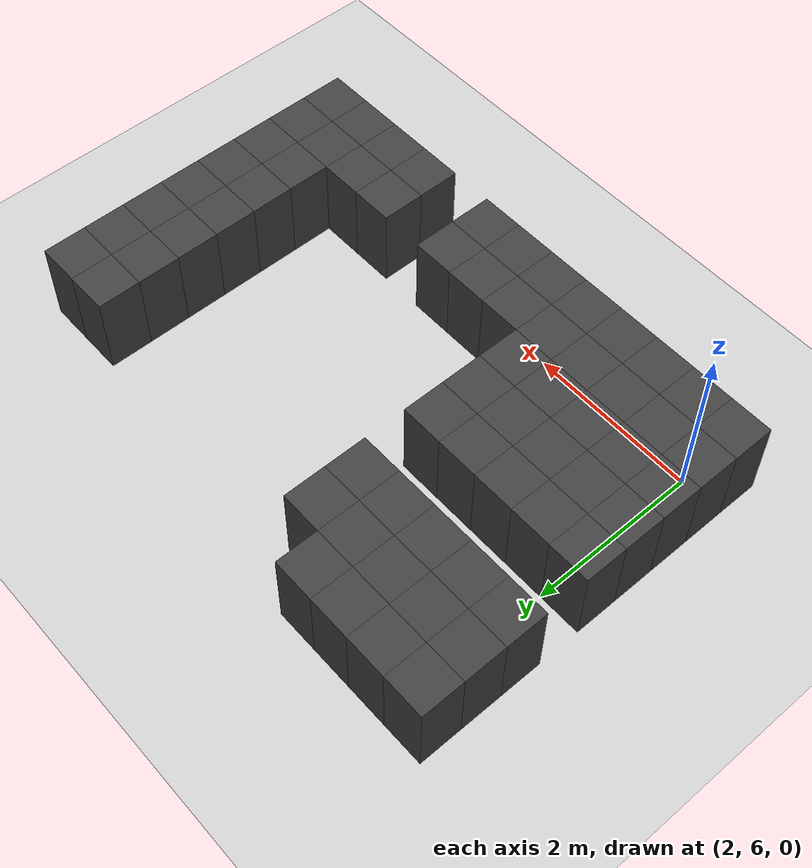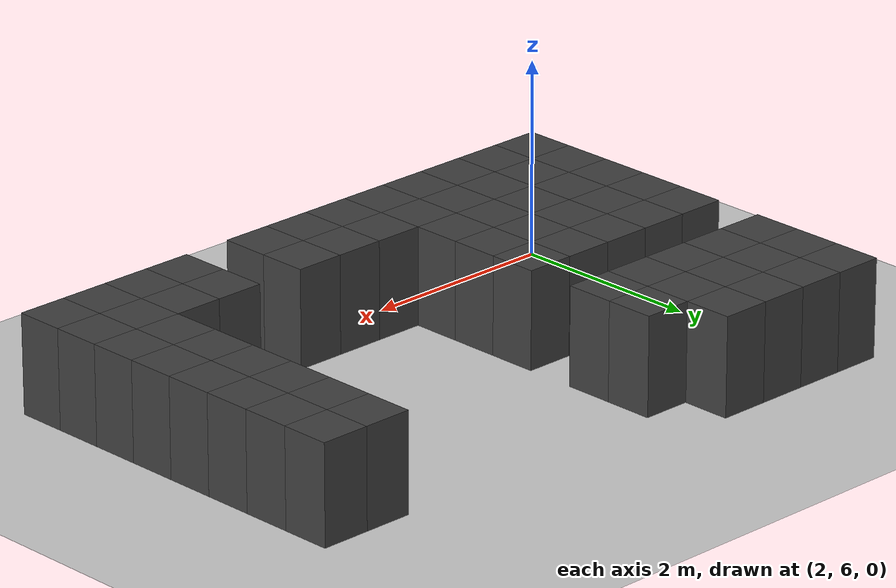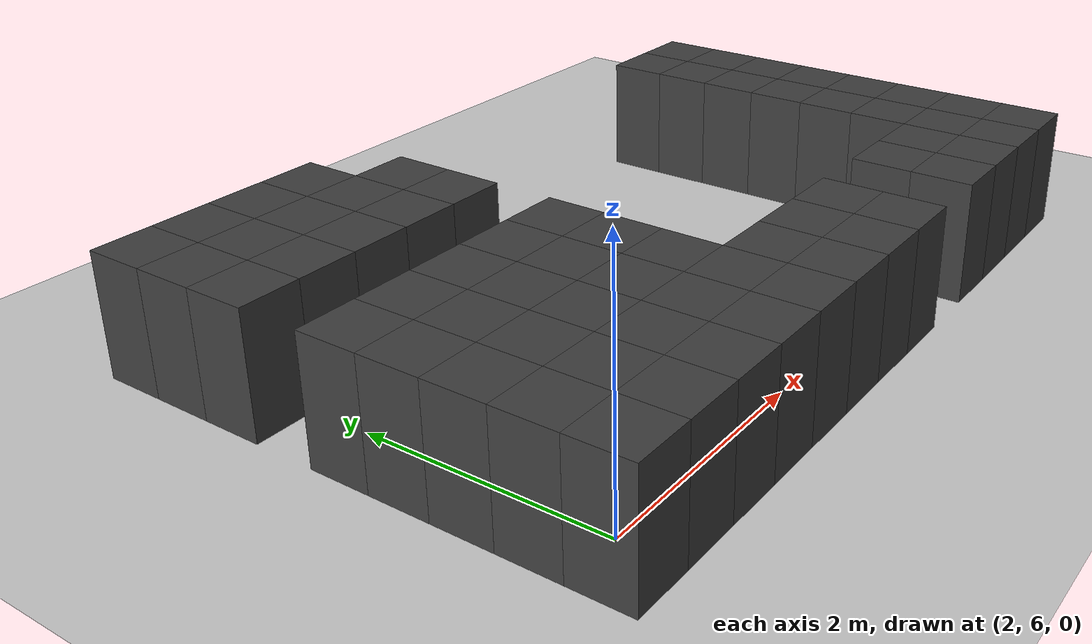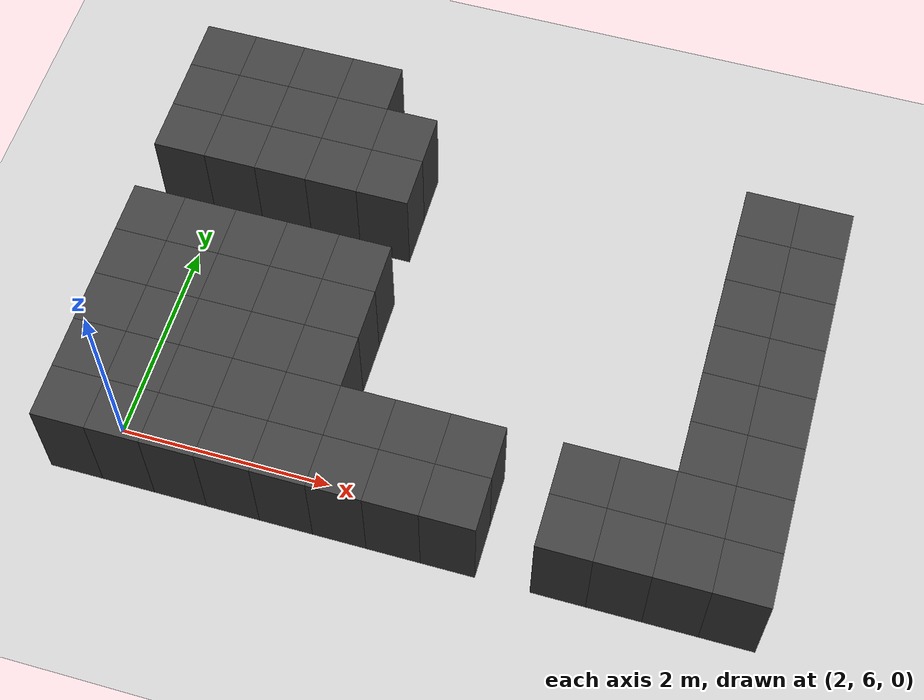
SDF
<sdf version="1.7">
 <world name="map_14735">
  <model name="ground_plane">
   <static>true</static>
   <link name="link">
    <collision name="collision">
     <geometry><plane><normal>0 0 1</normal><size>200 200</size></plane></geometry>
    </collision>
    <visual name="visual">
     <geometry><plane><normal>0 0 1</normal><size>200 200</size></plane></geometry>
     <material><ambient>0.8 0.8 0.8 1</ambient><diffuse>0.8 0.8 0.8 1</diffuse></material>
    </visual>
   </link>
  </model>
  <model name="maze_environment">
   <static>true</static>
   <link name="wall_203">
    <pose>1.750 9.750 0.500 0 0 0</pose>
    <collision name="col"><geometry><box><size>0.5 0.5 1.0</size></box></geometry></collision>
    <visual name="vis">
     <geometry><box><size>0.5 0.5 1.0</size></box></geometry>
     <material><ambient>0.15 0.15 0.15 1</ambient><diffuse>0.25 0.25 0.25 1</diffuse></material>
    </visual>
   </link>
   <link name="wall_204">
    <pose>2.250 9.750 0.500 0 0 0</pose>
    <collision name="col"><geometry><box><size>0.5 0.5 1.0</size></box></geometry></collision>
    <visual name="vis">
     <geometry><box><size>0.5 0.5 1.0</size></box></geometry>
     <material><ambient>0.15 0.15 0.15 1</ambient><diffuse>0.25 0.25 0.25 1</diffuse></material>
    </visual>
   </link>
   <link name="wall_205">
    <pose>2.750 9.750 0.500 0 0 0</pose>
    <collision name="col"><geometry><box><size>0.5 0.5 1.0</size></box></geometry></collision>
    <visual name="vis">
     <geometry><box><size>0.5 0.5 1.0</size></box></geometry>
     <material><ambient>0.15 0.15 0.15 1</ambient><diffuse>0.25 0.25 0.25 1</diffuse></material>
    </visual>
   </link>
   <link name="wall_206">
    <pose>3.250 9.750 0.500 0 0 0</pose>
    <collision name="col"><geometry><box><size>0.5 0.5 1.0</size></box></geometry></collision>
    <visual name="vis">
     <geometry><box><size>0.5 0.5 1.0</size></box></geometry>
     <material><ambient>0.15 0.15 0.15 1</ambient><diffuse>0.25 0.25 0.25 1</diffuse></material>
    </visual>
   </link>
   <link name="wall_224">
    <pose>1.750 9.250 0.500 0 0 0</pose>
    <collision name="col"><geometry><box><size>0.5 0.5 1.0</size></box></geometry></collision>
    <visual name="vis">
     <geometry><box><size>0.5 0.5 1.0</size></box></geometry>
     <material><ambient>0.15 0.15 0.15 1</ambient><diffuse>0.25 0.25 0.25 1</diffuse></material>
    </visual>
   </link>
   <link name="wall_225">
    <pose>2.250 9.250 0.500 0 0 0</pose>
    <collision name="col"><geometry><box><size>0.5 0.5 1.0</size></box></geometry></collision>
    <visual name="vis">
     <geometry><box><size>0.5 0.5 1.0</size></box></geometry>
     <material><ambient>0.15 0.15 0.15 1</ambient><diffuse>0.25 0.25 0.25 1</diffuse></material>
    </visual>
   </link>
   <link name="wall_226">
    <pose>2.750 9.250 0.500 0 0 0</pose>
    <collision name="col"><geometry><box><size>0.5 0.5 1.0</size></box></geometry></collision>
    <visual name="vis">
     <geometry><box><size>0.5 0.5 1.0</size></box></geometry>
     <material><ambient>0.15 0.15 0.15 1</ambient><diffuse>0.25 0.25 0.25 1</diffuse></material>
    </visual>
   </link>
   <link name="wall_227">
    <pose>3.250 9.250 0.500 0 0 0</pose>
    <collision name="col"><geometry><box><size>0.5 0.5 1.0</size></box></geometry></collision>
    <visual name="vis">
     <geometry><box><size>0.5 0.5 1.0</size></box></geometry>
     <material><ambient>0.15 0.15 0.15 1</ambient><diffuse>0.25 0.25 0.25 1</diffuse></material>
    </visual>
   </link>
   <link name="wall_228">
    <pose>3.750 9.250 0.500 0 0 0</pose>
    <collision name="col"><geometry><box><size>0.5 0.5 1.0</size></box></geometry></collision>
    <visual name="vis">
     <geometry><box><size>0.5 0.5 1.0</size></box></geometry>
     <material><ambient>0.15 0.15 0.15 1</ambient><diffuse>0.25 0.25 0.25 1</diffuse></material>
    </visual>
   </link>
   <link name="wall_229">
    <pose>7.250 9.250 0.500 0 0 0</pose>
    <collision name="col"><geometry><box><size>0.5 0.5 1.0</size></box></geometry></collision>
    <visual name="vis">
     <geometry><box><size>0.5 0.5 1.0</size></box></geometry>
     <material><ambient>0.15 0.15 0.15 1</ambient><diffuse>0.25 0.25 0.25 1</diffuse></material>
    </visual>
   </link>
   <link name="wall_230">
    <pose>7.750 9.250 0.500 0 0 0</pose>
    <collision name="col"><geometry><box><size>0.5 0.5 1.0</size></box></geometry></collision>
    <visual name="vis">
     <geometry><box><size>0.5 0.5 1.0</size></box></geometry>
     <material><ambient>0.15 0.15 0.15 1</ambient><diffuse>0.25 0.25 0.25 1</diffuse></material>
    </visual>
   </link>
   <link name="wall_246">
    <pose>1.750 8.750 0.500 0 0 0</pose>
    <collision name="col"><geometry><box><size>0.5 0.5 1.0</size></box></geometry></collision>
    <visual name="vis">
     <geometry><box><size>0.5 0.5 1.0</size></box></geometry>
     <material><ambient>0.15 0.15 0.15 1</ambient><diffuse>0.25 0.25 0.25 1</diffuse></material>
    </visual>
   </link>
   <link name="wall_247">
    <pose>2.250 8.750 0.500 0 0 0</pose>
    <collision name="col"><geometry><box><size>0.5 0.5 1.0</size></box></geometry></collision>
    <visual name="vis">
     <geometry><box><size>0.5 0.5 1.0</size></box></geometry>
     <material><ambient>0.15 0.15 0.15 1</ambient><diffuse>0.25 0.25 0.25 1</diffuse></material>
    </visual>
   </link>
   <link name="wall_248">
    <pose>2.750 8.750 0.500 0 0 0</pose>
    <collision name="col"><geometry><box><size>0.5 0.5 1.0</size></box></geometry></collision>
    <visual name="vis">
     <geometry><box><size>0.5 0.5 1.0</size></box></geometry>
     <material><ambient>0.15 0.15 0.15 1</ambient><diffuse>0.25 0.25 0.25 1</diffuse></material>
    </visual>
   </link>
   <link name="wall_249">
    <pose>3.250 8.750 0.500 0 0 0</pose>
    <collision name="col"><geometry><box><size>0.5 0.5 1.0</size></box></geometry></collision>
    <visual name="vis">
     <geometry><box><size>0.5 0.5 1.0</size></box></geometry>
     <material><ambient>0.15 0.15 0.15 1</ambient><diffuse>0.25 0.25 0.25 1</diffuse></material>
    </visual>
   </link>
   <link name="wall_250">
    <pose>3.750 8.750 0.500 0 0 0</pose>
    <collision name="col"><geometry><box><size>0.5 0.5 1.0</size></box></geometry></collision>
    <visual name="vis">
     <geometry><box><size>0.5 0.5 1.0</size></box></geometry>
     <material><ambient>0.15 0.15 0.15 1</ambient><diffuse>0.25 0.25 0.25 1</diffuse></material>
    </visual>
   </link>
   <link name="wall_251">
    <pose>7.250 8.750 0.500 0 0 0</pose>
    <collision name="col"><geometry><box><size>0.5 0.5 1.0</size></box></geometry></collision>
    <visual name="vis">
     <geometry><box><size>0.5 0.5 1.0</size></box></geometry>
     <material><ambient>0.15 0.15 0.15 1</ambient><diffuse>0.25 0.25 0.25 1</diffuse></material>
    </visual>
   </link>
   <link name="wall_252">
    <pose>7.750 8.750 0.500 0 0 0</pose>
    <collision name="col"><geometry><box><size>0.5 0.5 1.0</size></box></geometry></collision>
    <visual name="vis">
     <geometry><box><size>0.5 0.5 1.0</size></box></geometry>
     <material><ambient>0.15 0.15 0.15 1</ambient><diffuse>0.25 0.25 0.25 1</diffuse></material>
    </visual>
   </link>
   <link name="wall_271">
    <pose>7.250 8.250 0.500 0 0 0</pose>
    <collision name="col"><geometry><box><size>0.5 0.5 1.0</size></box></geometry></collision>
    <visual name="vis">
     <geometry><box><size>0.5 0.5 1.0</size></box></geometry>
     <material><ambient>0.15 0.15 0.15 1</ambient><diffuse>0.25 0.25 0.25 1</diffuse></material>
    </visual>
   </link>
   <link name="wall_272">
    <pose>7.750 8.250 0.500 0 0 0</pose>
    <collision name="col"><geometry><box><size>0.5 0.5 1.0</size></box></geometry></collision>
    <visual name="vis">
     <geometry><box><size>0.5 0.5 1.0</size></box></geometry>
     <material><ambient>0.15 0.15 0.15 1</ambient><diffuse>0.25 0.25 0.25 1</diffuse></material>
    </visual>
   </link>
   <link name="wall_288">
    <pose>1.750 7.750 0.500 0 0 0</pose>
    <collision name="col"><geometry><box><size>0.5 0.5 1.0</size></box></geometry></collision>
    <visual name="vis">
     <geometry><box><size>0.5 0.5 1.0</size></box></geometry>
     <material><ambient>0.15 0.15 0.15 1</ambient><diffuse>0.25 0.25 0.25 1</diffuse></material>
    </visual>
   </link>
   <link name="wall_289">
    <pose>2.250 7.750 0.500 0 0 0</pose>
    <collision name="col"><geometry><box><size>0.5 0.5 1.0</size></box></geometry></collision>
    <visual name="vis">
     <geometry><box><size>0.5 0.5 1.0</size></box></geometry>
     <material><ambient>0.15 0.15 0.15 1</ambient><diffuse>0.25 0.25 0.25 1</diffuse></material>
    </visual>
   </link>
   <link name="wall_290">
    <pose>2.750 7.750 0.500 0 0 0</pose>
    <collision name="col"><geometry><box><size>0.5 0.5 1.0</size></box></geometry></collision>
    <visual name="vis">
     <geometry><box><size>0.5 0.5 1.0</size></box></geometry>
     <material><ambient>0.15 0.15 0.15 1</ambient><diffuse>0.25 0.25 0.25 1</diffuse></material>
    </visual>
   </link>
   <link name="wall_291">
    <pose>3.250 7.750 0.500 0 0 0</pose>
    <collision name="col"><geometry><box><size>0.5 0.5 1.0</size></box></geometry></collision>
    <visual name="vis">
     <geometry><box><size>0.5 0.5 1.0</size></box></geometry>
     <material><ambient>0.15 0.15 0.15 1</ambient><diffuse>0.25 0.25 0.25 1</diffuse></material>
    </visual>
   </link>
   <link name="wall_292">
    <pose>3.750 7.750 0.500 0 0 0</pose>
    <collision name="col"><geometry><box><size>0.5 0.5 1.0</size></box></geometry></collision>
    <visual name="vis">
     <geometry><box><size>0.5 0.5 1.0</size></box></geometry>
     <material><ambient>0.15 0.15 0.15 1</ambient><diffuse>0.25 0.25 0.25 1</diffuse></material>
    </visual>
   </link>
   <link name="wall_293">
    <pose>7.250 7.750 0.500 0 0 0</pose>
    <collision name="col"><geometry><box><size>0.5 0.5 1.0</size></box></geometry></collision>
    <visual name="vis">
     <geometry><box><size>0.5 0.5 1.0</size></box></geometry>
     <material><ambient>0.15 0.15 0.15 1</ambient><diffuse>0.25 0.25 0.25 1</diffuse></material>
    </visual>
   </link>
   <link name="wall_294">
    <pose>7.750 7.750 0.500 0 0 0</pose>
    <collision name="col"><geometry><box><size>0.5 0.5 1.0</size></box></geometry></collision>
    <visual name="vis">
     <geometry><box><size>0.5 0.5 1.0</size></box></geometry>
     <material><ambient>0.15 0.15 0.15 1</ambient><diffuse>0.25 0.25 0.25 1</diffuse></material>
    </visual>
   </link>
   <link name="wall_310">
    <pose>1.750 7.250 0.500 0 0 0</pose>
    <collision name="col"><geometry><box><size>0.5 0.5 1.0</size></box></geometry></collision>
    <visual name="vis">
     <geometry><box><size>0.5 0.5 1.0</size></box></geometry>
     <material><ambient>0.15 0.15 0.15 1</ambient><diffuse>0.25 0.25 0.25 1</diffuse></material>
    </visual>
   </link>
   <link name="wall_311">
    <pose>2.250 7.250 0.500 0 0 0</pose>
    <collision name="col"><geometry><box><size>0.5 0.5 1.0</size></box></geometry></collision>
    <visual name="vis">
     <geometry><box><size>0.5 0.5 1.0</size></box></geometry>
     <material><ambient>0.15 0.15 0.15 1</ambient><diffuse>0.25 0.25 0.25 1</diffuse></material>
    </visual>
   </link>
   <link name="wall_312">
    <pose>2.750 7.250 0.500 0 0 0</pose>
    <collision name="col"><geometry><box><size>0.5 0.5 1.0</size></box></geometry></collision>
    <visual name="vis">
     <geometry><box><size>0.5 0.5 1.0</size></box></geometry>
     <material><ambient>0.15 0.15 0.15 1</ambient><diffuse>0.25 0.25 0.25 1</diffuse></material>
    </visual>
   </link>
   <link name="wall_313">
    <pose>3.250 7.250 0.500 0 0 0</pose>
    <collision name="col"><geometry><box><size>0.5 0.5 1.0</size></box></geometry></collision>
    <visual name="vis">
     <geometry><box><size>0.5 0.5 1.0</size></box></geometry>
     <material><ambient>0.15 0.15 0.15 1</ambient><diffuse>0.25 0.25 0.25 1</diffuse></material>
    </visual>
   </link>
   <link name="wall_314">
    <pose>3.750 7.250 0.500 0 0 0</pose>
    <collision name="col"><geometry><box><size>0.5 0.5 1.0</size></box></geometry></collision>
    <visual name="vis">
     <geometry><box><size>0.5 0.5 1.0</size></box></geometry>
     <material><ambient>0.15 0.15 0.15 1</ambient><diffuse>0.25 0.25 0.25 1</diffuse></material>
    </visual>
   </link>
   <link name="wall_315">
    <pose>7.250 7.250 0.500 0 0 0</pose>
    <collision name="col"><geometry><box><size>0.5 0.5 1.0</size></box></geometry></collision>
    <visual name="vis">
     <geometry><box><size>0.5 0.5 1.0</size></box></geometry>
     <material><ambient>0.15 0.15 0.15 1</ambient><diffuse>0.25 0.25 0.25 1</diffuse></material>
    </visual>
   </link>
   <link name="wall_316">
    <pose>7.750 7.250 0.500 0 0 0</pose>
    <collision name="col"><geometry><box><size>0.5 0.5 1.0</size></box></geometry></collision>
    <visual name="vis">
     <geometry><box><size>0.5 0.5 1.0</size></box></geometry>
     <material><ambient>0.15 0.15 0.15 1</ambient><diffuse>0.25 0.25 0.25 1</diffuse></material>
    </visual>
   </link>
   <link name="wall_339">
    <pose>1.750 6.750 0.500 0 0 0</pose>
    <collision name="col"><geometry><box><size>0.5 0.5 1.0</size></box></geometry></collision>
    <visual name="vis">
     <geometry><box><size>0.5 0.5 1.0</size></box></geometry>
     <material><ambient>0.15 0.15 0.15 1</ambient><diffuse>0.25 0.25 0.25 1</diffuse></material>
    </visual>
   </link>
   <link name="wall_340">
    <pose>2.250 6.750 0.500 0 0 0</pose>
    <collision name="col"><geometry><box><size>0.5 0.5 1.0</size></box></geometry></collision>
    <visual name="vis">
     <geometry><box><size>0.5 0.5 1.0</size></box></geometry>
     <material><ambient>0.15 0.15 0.15 1</ambient><diffuse>0.25 0.25 0.25 1</diffuse></material>
    </visual>
   </link>
   <link name="wall_341">
    <pose>2.750 6.750 0.500 0 0 0</pose>
    <collision name="col"><geometry><box><size>0.5 0.5 1.0</size></box></geometry></collision>
    <visual name="vis">
     <geometry><box><size>0.5 0.5 1.0</size></box></geometry>
     <material><ambient>0.15 0.15 0.15 1</ambient><diffuse>0.25 0.25 0.25 1</diffuse></material>
    </visual>
   </link>
   <link name="wall_342">
    <pose>3.250 6.750 0.500 0 0 0</pose>
    <collision name="col"><geometry><box><size>0.5 0.5 1.0</size></box></geometry></collision>
    <visual name="vis">
     <geometry><box><size>0.5 0.5 1.0</size></box></geometry>
     <material><ambient>0.15 0.15 0.15 1</ambient><diffuse>0.25 0.25 0.25 1</diffuse></material>
    </visual>
   </link>
   <link name="wall_343">
    <pose>3.750 6.750 0.500 0 0 0</pose>
    <collision name="col"><geometry><box><size>0.5 0.5 1.0</size></box></geometry></collision>
    <visual name="vis">
     <geometry><box><size>0.5 0.5 1.0</size></box></geometry>
     <material><ambient>0.15 0.15 0.15 1</ambient><diffuse>0.25 0.25 0.25 1</diffuse></material>
    </visual>
   </link>
   <link name="wall_344">
    <pose>7.250 6.750 0.500 0 0 0</pose>
    <collision name="col"><geometry><box><size>0.5 0.5 1.0</size></box></geometry></collision>
    <visual name="vis">
     <geometry><box><size>0.5 0.5 1.0</size></box></geometry>
     <material><ambient>0.15 0.15 0.15 1</ambient><diffuse>0.25 0.25 0.25 1</diffuse></material>
    </visual>
   </link>
   <link name="wall_345">
    <pose>7.750 6.750 0.500 0 0 0</pose>
    <collision name="col"><geometry><box><size>0.5 0.5 1.0</size></box></geometry></collision>
    <visual name="vis">
     <geometry><box><size>0.5 0.5 1.0</size></box></geometry>
     <material><ambient>0.15 0.15 0.15 1</ambient><diffuse>0.25 0.25 0.25 1</diffuse></material>
    </visual>
   </link>
   <link name="wall_368">
    <pose>1.750 6.250 0.500 0 0 0</pose>
    <collision name="col"><geometry><box><size>0.5 0.5 1.0</size></box></geometry></collision>
    <visual name="vis">
     <geometry><box><size>0.5 0.5 1.0</size></box></geometry>
     <material><ambient>0.15 0.15 0.15 1</ambient><diffuse>0.25 0.25 0.25 1</diffuse></material>
    </visual>
   </link>
   <link name="wall_369">
    <pose>2.250 6.250 0.500 0 0 0</pose>
    <collision name="col"><geometry><box><size>0.5 0.5 1.0</size></box></geometry></collision>
    <visual name="vis">
     <geometry><box><size>0.5 0.5 1.0</size></box></geometry>
     <material><ambient>0.15 0.15 0.15 1</ambient><diffuse>0.25 0.25 0.25 1</diffuse></material>
    </visual>
   </link>
   <link name="wall_370">
    <pose>2.750 6.250 0.500 0 0 0</pose>
    <collision name="col"><geometry><box><size>0.5 0.5 1.0</size></box></geometry></collision>
    <visual name="vis">
     <geometry><box><size>0.5 0.5 1.0</size></box></geometry>
     <material><ambient>0.15 0.15 0.15 1</ambient><diffuse>0.25 0.25 0.25 1</diffuse></material>
    </visual>
   </link>
   <link name="wall_371">
    <pose>3.250 6.250 0.500 0 0 0</pose>
    <collision name="col"><geometry><box><size>0.5 0.5 1.0</size></box></geometry></collision>
    <visual name="vis">
     <geometry><box><size>0.5 0.5 1.0</size></box></geometry>
     <material><ambient>0.15 0.15 0.15 1</ambient><diffuse>0.25 0.25 0.25 1</diffuse></material>
    </visual>
   </link>
   <link name="wall_372">
    <pose>3.750 6.250 0.500 0 0 0</pose>
    <collision name="col"><geometry><box><size>0.5 0.5 1.0</size></box></geometry></collision>
    <visual name="vis">
     <geometry><box><size>0.5 0.5 1.0</size></box></geometry>
     <material><ambient>0.15 0.15 0.15 1</ambient><diffuse>0.25 0.25 0.25 1</diffuse></material>
    </visual>
   </link>
   <link name="wall_373">
    <pose>4.250 6.250 0.500 0 0 0</pose>
    <collision name="col"><geometry><box><size>0.5 0.5 1.0</size></box></geometry></collision>
    <visual name="vis">
     <geometry><box><size>0.5 0.5 1.0</size></box></geometry>
     <material><ambient>0.15 0.15 0.15 1</ambient><diffuse>0.25 0.25 0.25 1</diffuse></material>
    </visual>
   </link>
   <link name="wall_374">
    <pose>4.750 6.250 0.500 0 0 0</pose>
    <collision name="col"><geometry><box><size>0.5 0.5 1.0</size></box></geometry></collision>
    <visual name="vis">
     <geometry><box><size>0.5 0.5 1.0</size></box></geometry>
     <material><ambient>0.15 0.15 0.15 1</ambient><diffuse>0.25 0.25 0.25 1</diffuse></material>
    </visual>
   </link>
   <link name="wall_375">
    <pose>5.250 6.250 0.500 0 0 0</pose>
    <collision name="col"><geometry><box><size>0.5 0.5 1.0</size></box></geometry></collision>
    <visual name="vis">
     <geometry><box><size>0.5 0.5 1.0</size></box></geometry>
     <material><ambient>0.15 0.15 0.15 1</ambient><diffuse>0.25 0.25 0.25 1</diffuse></material>
    </visual>
   </link>
   <link name="wall_376">
    <pose>6.250 6.250 0.500 0 0 0</pose>
    <collision name="col"><geometry><box><size>0.5 0.5 1.0</size></box></geometry></collision>
    <visual name="vis">
     <geometry><box><size>0.5 0.5 1.0</size></box></geometry>
     <material><ambient>0.15 0.15 0.15 1</ambient><diffuse>0.25 0.25 0.25 1</diffuse></material>
    </visual>
   </link>
   <link name="wall_377">
    <pose>6.750 6.250 0.500 0 0 0</pose>
    <collision name="col"><geometry><box><size>0.5 0.5 1.0</size></box></geometry></collision>
    <visual name="vis">
     <geometry><box><size>0.5 0.5 1.0</size></box></geometry>
     <material><ambient>0.15 0.15 0.15 1</ambient><diffuse>0.25 0.25 0.25 1</diffuse></material>
    </visual>
   </link>
   <link name="wall_378">
    <pose>7.250 6.250 0.500 0 0 0</pose>
    <collision name="col"><geometry><box><size>0.5 0.5 1.0</size></box></geometry></collision>
    <visual name="vis">
     <geometry><box><size>0.5 0.5 1.0</size></box></geometry>
     <material><ambient>0.15 0.15 0.15 1</ambient><diffuse>0.25 0.25 0.25 1</diffuse></material>
    </visual>
   </link>
   <link name="wall_379">
    <pose>7.750 6.250 0.500 0 0 0</pose>
    <collision name="col"><geometry><box><size>0.5 0.5 1.0</size></box></geometry></collision>
    <visual name="vis">
     <geometry><box><size>0.5 0.5 1.0</size></box></geometry>
     <material><ambient>0.15 0.15 0.15 1</ambient><diffuse>0.25 0.25 0.25 1</diffuse></material>
    </visual>
   </link>
   <link name="wall_402">
    <pose>1.750 5.750 0.500 0 0 0</pose>
    <collision name="col"><geometry><box><size>0.5 0.5 1.0</size></box></geometry></collision>
    <visual name="vis">
     <geometry><box><size>0.5 0.5 1.0</size></box></geometry>
     <material><ambient>0.15 0.15 0.15 1</ambient><diffuse>0.25 0.25 0.25 1</diffuse></material>
    </visual>
   </link>
   <link name="wall_403">
    <pose>2.250 5.750 0.500 0 0 0</pose>
    <collision name="col"><geometry><box><size>0.5 0.5 1.0</size></box></geometry></collision>
    <visual name="vis">
     <geometry><box><size>0.5 0.5 1.0</size></box></geometry>
     <material><ambient>0.15 0.15 0.15 1</ambient><diffuse>0.25 0.25 0.25 1</diffuse></material>
    </visual>
   </link>
   <link name="wall_404">
    <pose>2.750 5.750 0.500 0 0 0</pose>
    <collision name="col"><geometry><box><size>0.5 0.5 1.0</size></box></geometry></collision>
    <visual name="vis">
     <geometry><box><size>0.5 0.5 1.0</size></box></geometry>
     <material><ambient>0.15 0.15 0.15 1</ambient><diffuse>0.25 0.25 0.25 1</diffuse></material>
    </visual>
   </link>
   <link name="wall_405">
    <pose>3.250 5.750 0.500 0 0 0</pose>
    <collision name="col"><geometry><box><size>0.5 0.5 1.0</size></box></geometry></collision>
    <visual name="vis">
     <geometry><box><size>0.5 0.5 1.0</size></box></geometry>
     <material><ambient>0.15 0.15 0.15 1</ambient><diffuse>0.25 0.25 0.25 1</diffuse></material>
    </visual>
   </link>
   <link name="wall_406">
    <pose>3.750 5.750 0.500 0 0 0</pose>
    <collision name="col"><geometry><box><size>0.5 0.5 1.0</size></box></geometry></collision>
    <visual name="vis">
     <geometry><box><size>0.5 0.5 1.0</size></box></geometry>
     <material><ambient>0.15 0.15 0.15 1</ambient><diffuse>0.25 0.25 0.25 1</diffuse></material>
    </visual>
   </link>
   <link name="wall_407">
    <pose>4.250 5.750 0.500 0 0 0</pose>
    <collision name="col"><geometry><box><size>0.5 0.5 1.0</size></box></geometry></collision>
    <visual name="vis">
     <geometry><box><size>0.5 0.5 1.0</size></box></geometry>
     <material><ambient>0.15 0.15 0.15 1</ambient><diffuse>0.25 0.25 0.25 1</diffuse></material>
    </visual>
   </link>
   <link name="wall_408">
    <pose>4.750 5.750 0.500 0 0 0</pose>
    <collision name="col"><geometry><box><size>0.5 0.5 1.0</size></box></geometry></collision>
    <visual name="vis">
     <geometry><box><size>0.5 0.5 1.0</size></box></geometry>
     <material><ambient>0.15 0.15 0.15 1</ambient><diffuse>0.25 0.25 0.25 1</diffuse></material>
    </visual>
   </link>
   <link name="wall_409">
    <pose>5.250 5.750 0.500 0 0 0</pose>
    <collision name="col"><geometry><box><size>0.5 0.5 1.0</size></box></geometry></collision>
    <visual name="vis">
     <geometry><box><size>0.5 0.5 1.0</size></box></geometry>
     <material><ambient>0.15 0.15 0.15 1</ambient><diffuse>0.25 0.25 0.25 1</diffuse></material>
    </visual>
   </link>
   <link name="wall_410">
    <pose>6.250 5.750 0.500 0 0 0</pose>
    <collision name="col"><geometry><box><size>0.5 0.5 1.0</size></box></geometry></collision>
    <visual name="vis">
     <geometry><box><size>0.5 0.5 1.0</size></box></geometry>
     <material><ambient>0.15 0.15 0.15 1</ambient><diffuse>0.25 0.25 0.25 1</diffuse></material>
    </visual>
   </link>
   <link name="wall_411">
    <pose>6.750 5.750 0.500 0 0 0</pose>
    <collision name="col"><geometry><box><size>0.5 0.5 1.0</size></box></geometry></collision>
    <visual name="vis">
     <geometry><box><size>0.5 0.5 1.0</size></box></geometry>
     <material><ambient>0.15 0.15 0.15 1</ambient><diffuse>0.25 0.25 0.25 1</diffuse></material>
    </visual>
   </link>
   <link name="wall_412">
    <pose>7.250 5.750 0.500 0 0 0</pose>
    <collision name="col"><geometry><box><size>0.5 0.5 1.0</size></box></geometry></collision>
    <visual name="vis">
     <geometry><box><size>0.5 0.5 1.0</size></box></geometry>
     <material><ambient>0.15 0.15 0.15 1</ambient><diffuse>0.25 0.25 0.25 1</diffuse></material>
    </visual>
   </link>
   <link name="wall_413">
    <pose>7.750 5.750 0.500 0 0 0</pose>
    <collision name="col"><geometry><box><size>0.5 0.5 1.0</size></box></geometry></collision>
    <visual name="vis">
     <geometry><box><size>0.5 0.5 1.0</size></box></geometry>
     <material><ambient>0.15 0.15 0.15 1</ambient><diffuse>0.25 0.25 0.25 1</diffuse></material>
    </visual>
   </link>
  </model>
 </world>
</sdf>
